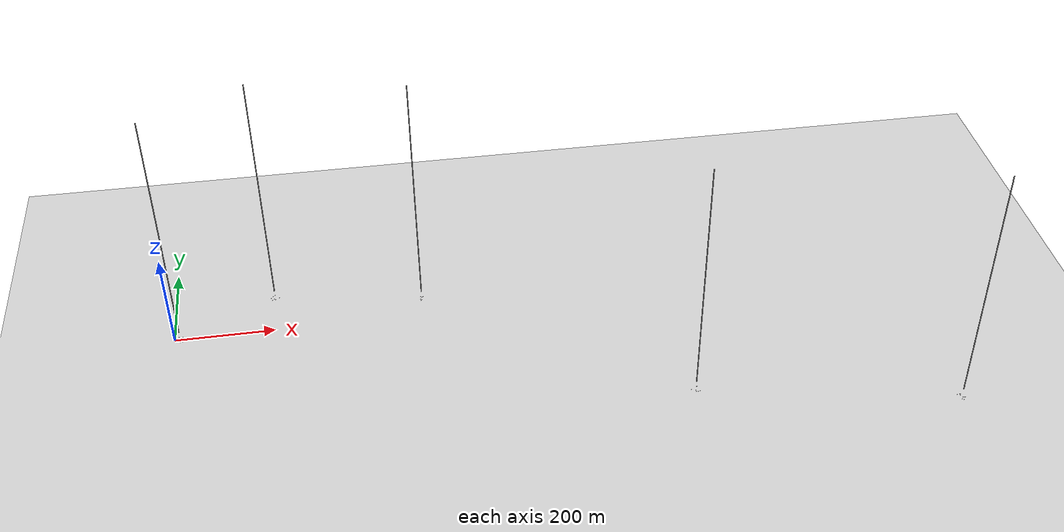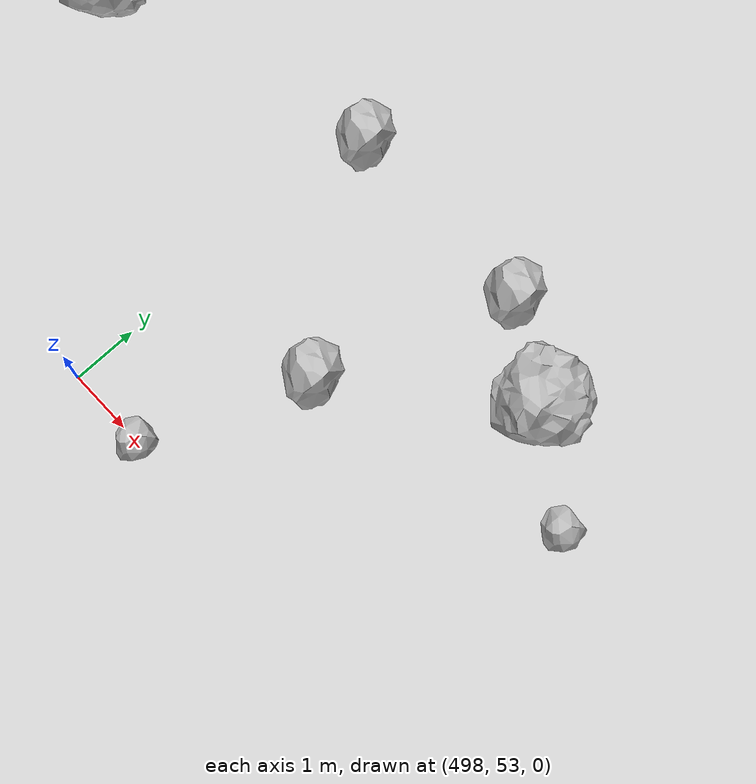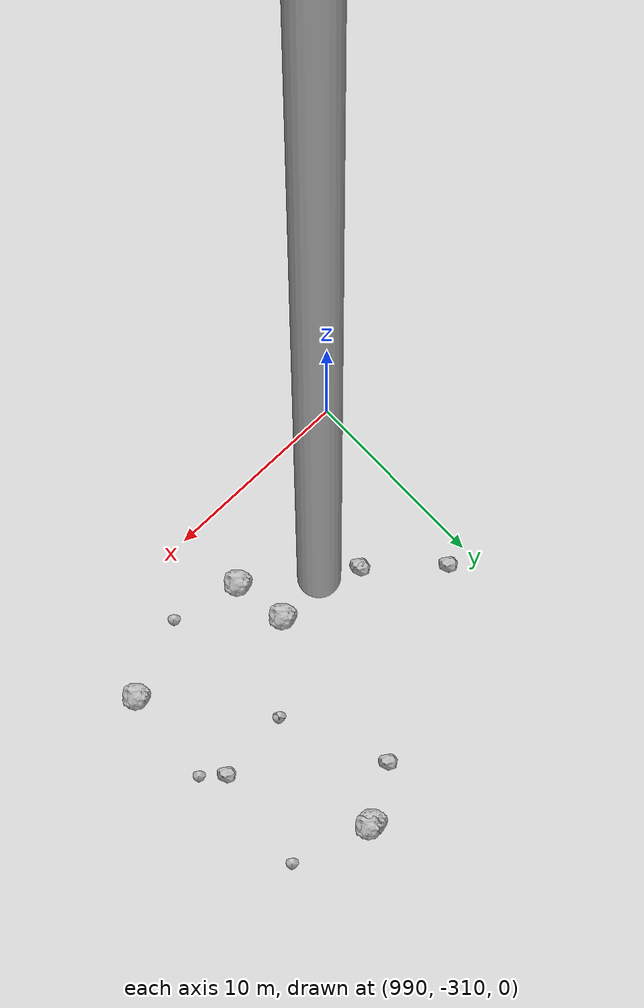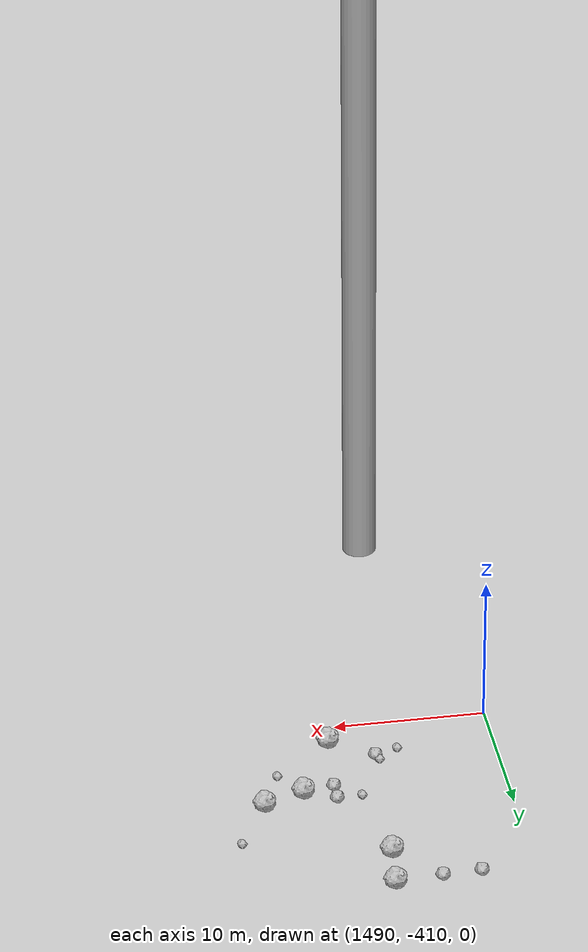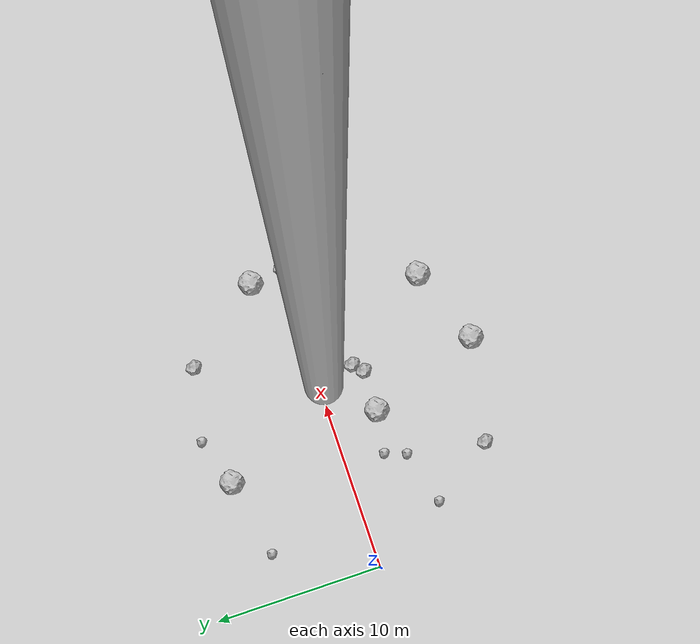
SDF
<?xml version="1.0" ?>
<sdf version="1.6">
  <world name="default">

    <include>
      <uri>model://custom_ground</uri>
    </include>

    <include>
      <uri>model://sun</uri>
    </include>

    <spherical_coordinates>
      <surface_model>EARTH_WGS84</surface_model>
      <latitude_deg>38.161479</latitude_deg>
      <longitude_deg>-122.454630</longitude_deg>
      <elevation>488.0</elevation>
      <heading_deg>90</heading_deg>
    </spherical_coordinates>

    <model name="rock1_0_0">
      <include>
        <uri>model://rock1</uri>
        <pose>18.297749514372303 1.9059714410768471 0.5 0 0 0</pose>
      </include>
    </model>
    <model name="rock1_0_1">
      <include>
        <uri>model://rock1</uri>
        <pose>15.688067243015762 -7.612247149562985 0.5 0 0 0</pose>
      </include>
    </model>
    <model name="rock1_0_2">
      <include>
        <uri>model://rock1</uri>
        <pose>11.166085764328631 -9.390644277486555 0.5 0 0 0</pose>
      </include>
    </model>
    <model name="rock1_0_3">
      <include>
        <uri>model://rock1</uri>
        <pose>7.521637904810985 6.663339762407524 0.5 0 0 0</pose>
      </include>
    </model>
    <model name="rock1_0_4">
      <include>
        <uri>model://rock1</uri>
        <pose>8.858274806008076 -2.7621726312067256 0.5 0 0 0</pose>
      </include>
    </model>
    <model name="rock2_0_0">
      <include>
        <uri>model://rock2</uri>
        <pose>14.6293649791792 6.664395248156978 0.3 0 0 0</pose>
      </include>
    </model>
    <model name="rock2_0_1">
      <include>
        <uri>model://rock2</uri>
        <pose>11.256816786763498 -2.7715187520063616 0.3 0 0 0</pose>
      </include>
    </model>
    <model name="rock2_0_2">
      <include>
        <uri>model://rock2</uri>
        <pose>11.83101241880625 -2.235195429423511 0.3 0 0 0</pose>
      </include>
    </model>
    <model name="rock2_0_3">
      <include>
        <uri>model://rock2</uri>
        <pose>18.57304821944747 -0.08541954743800773 0.3 0 0 0</pose>
      </include>
    </model>
    <model name="rock2_0_4">
      <include>
        <uri>model://rock2</uri>
        <pose>5.028827595106053 -8.199830671971988 0.3 0 0 0</pose>
      </include>
    </model>
    <model name="rock3_0_0">
      <include>
        <uri>model://rock3</uri>
        <pose>2.550660256418844 -4.546577076773657 0.2 0 0 0</pose>
      </include>
    </model>
    <model name="rock3_0_1">
      <include>
        <uri>model://rock3</uri>
        <pose>10.302291851389416 7.587578350263062 0.2 0 0 0</pose>
      </include>
    </model>
    <model name="rock3_0_2">
      <include>
        <uri>model://rock3</uri>
        <pose>2.751529444563685 5.756233728380913 0.2 0 0 0</pose>
      </include>
    </model>
    <model name="rock3_0_3">
      <include>
        <uri>model://rock3</uri>
        <pose>5.796684003630874 -3.6461969687227374 0.2 0 0 0</pose>
      </include>
    </model>
    <model name="rock3_0_4">
      <include>
        <uri>model://rock3</uri>
        <pose>6.252406216798305 -2.3800986936486286 0.2 0 0 0</pose>
      </include>
    </model>
    <model name="rock1_1_0">
      <include>
        <uri>model://rock1</uri>
        <pose>195.87504784436095 105.06995242649653 0.5 0 0 0</pose>
      </include>
    </model>
    <model name="rock1_1_1">
      <include>
        <uri>model://rock1</uri>
        <pose>191.9578531612461 101.18582205398512 0.5 0 0 0</pose>
      </include>
    </model>
    <model name="rock1_1_2">
      <include>
        <uri>model://rock1</uri>
        <pose>207.78146853634328 98.53543162290643 0.5 0 0 0</pose>
      </include>
    </model>
    <model name="rock1_1_3">
      <include>
        <uri>model://rock1</uri>
        <pose>197.6291673913861 96.88099111316777 0.5 0 0 0</pose>
      </include>
    </model>
    <model name="rock1_1_4">
      <include>
        <uri>model://rock1</uri>
        <pose>208.76154276896216 100.15258494742426 0.5 0 0 0</pose>
      </include>
    </model>
    <model name="rock2_1_0">
      <include>
        <uri>model://rock2</uri>
        <pose>194.23750380868674 93.5326784489037 0.3 0 0 0</pose>
      </include>
    </model>
    <model name="rock2_1_1">
      <include>
        <uri>model://rock2</uri>
        <pose>200.72034959848327 95.74718996605115 0.3 0 0 0</pose>
      </include>
    </model>
    <model name="rock2_1_2">
      <include>
        <uri>model://rock2</uri>
        <pose>208.5225518550504 103.17351864277921 0.3 0 0 0</pose>
      </include>
    </model>
    <model name="rock2_1_3">
      <include>
        <uri>model://rock2</uri>
        <pose>199.71645793164066 108.9898618695544 0.3 0 0 0</pose>
      </include>
    </model>
    <model name="rock2_1_4">
      <include>
        <uri>model://rock2</uri>
        <pose>197.3632482637654 103.33308219905004 0.3 0 0 0</pose>
      </include>
    </model>
    <model name="rock3_1_0">
      <include>
        <uri>model://rock3</uri>
        <pose>198.58688497734337 94.84870031692056 0.2 0 0 0</pose>
      </include>
    </model>
    <model name="rock3_1_1">
      <include>
        <uri>model://rock3</uri>
        <pose>204.09096816595496 97.16668305651612 0.2 0 0 0</pose>
      </include>
    </model>
    <model name="rock3_1_2">
      <include>
        <uri>model://rock3</uri>
        <pose>207.37911191161155 100.61141823610488 0.2 0 0 0</pose>
      </include>
    </model>
    <model name="rock3_1_3">
      <include>
        <uri>model://rock3</uri>
        <pose>201.67020671457084 92.46235075092268 0.2 0 0 0</pose>
      </include>
    </model>
    <model name="rock3_1_4">
      <include>
        <uri>model://rock3</uri>
        <pose>201.1444696492474 107.57596822387941 0.2 0 0 0</pose>
      </include>
    </model>
    <model name="rock1_2_0">
      <include>
        <uri>model://rock1</uri>
        <pose>497.65125980516245 49.37052923343554 0.5 0 0 0</pose>
      </include>
    </model>
    <model name="rock1_2_1">
      <include>
        <uri>model://rock1</uri>
        <pose>499.9990674486124 47.853130171599226 0.5 0 0 0</pose>
      </include>
    </model>
    <model name="rock1_2_2">
      <include>
        <uri>model://rock1</uri>
        <pose>498.0446885155236 46.482754072136274 0.5 0 0 0</pose>
      </include>
    </model>
    <model name="rock1_2_3">
      <include>
        <uri>model://rock1</uri>
        <pose>493.6129274212431 57.292511534721164 0.5 0 0 0</pose>
      </include>
    </model>
    <model name="rock1_2_4">
      <include>
        <uri>model://rock1</uri>
        <pose>502.79670228971554 57.48204866635213 0.5 0 0 0</pose>
      </include>
    </model>
    <model name="rock2_2_0">
      <include>
        <uri>model://rock2</uri>
        <pose>498.102988101986 58.465215448372405 0.3 0 0 0</pose>
      </include>
    </model>
    <model name="rock2_2_1">
      <include>
        <uri>model://rock2</uri>
        <pose>502.23555248708135 48.3345123121346 0.3 0 0 0</pose>
      </include>
    </model>
    <model name="rock2_2_2">
      <include>
        <uri>model://rock2</uri>
        <pose>500.2693649852223 55.4558910883443 0.3 0 0 0</pose>
      </include>
    </model>
    <model name="rock2_2_3">
      <include>
        <uri>model://rock2</uri>
        <pose>501.3509129789034 58.37142342009876 0.3 0 0 0</pose>
      </include>
    </model>
    <model name="rock2_2_4">
      <include>
        <uri>model://rock2</uri>
        <pose>500.52008797578833 46.63068027110561 0.3 0 0 0</pose>
      </include>
    </model>
    <model name="rock3_2_0">
      <include>
        <uri>model://rock3</uri>
        <pose>504.21085493827184 56.448136330963045 0.2 0 0 0</pose>
      </include>
    </model>
    <model name="rock3_2_1">
      <include>
        <uri>model://rock3</uri>
        <pose>499.28123540233514 52.97707351847223 0.2 0 0 0</pose>
      </include>
    </model>
    <model name="rock3_2_2">
      <include>
        <uri>model://rock3</uri>
        <pose>505.1286371570976 41.700993708207676 0.2 0 0 0</pose>
      </include>
    </model>
    <model name="rock3_2_3">
      <include>
        <uri>model://rock3</uri>
        <pose>490.55160228844716 49.90253066486501 0.2 0 0 0</pose>
      </include>
    </model>
    <model name="rock3_2_4">
      <include>
        <uri>model://rock3</uri>
        <pose>497.2907186889731 45.49567749448924 0.2 0 0 0</pose>
      </include>
    </model>
    <model name="rock1_3_0">
      <include>
        <uri>model://rock1</uri>
        <pose>999.2122858121795 -303.6200445525087 0.5 0 0 0</pose>
      </include>
    </model>
    <model name="rock1_3_1">
      <include>
        <uri>model://rock1</uri>
        <pose>999.6532972765287 -306.4557265704347 0.5 0 0 0</pose>
      </include>
    </model>
    <model name="rock1_3_2">
      <include>
        <uri>model://rock1</uri>
        <pose>1003.2472765104518 -292.83164232767837 0.5 0 0 0</pose>
      </include>
    </model>
    <model name="rock1_3_3">
      <include>
        <uri>model://rock1</uri>
        <pose>1007.3883929433163 -305.6664042219277 0.5 0 0 0</pose>
      </include>
    </model>
    <model name="rock1_3_4">
      <include>
        <uri>model://rock1</uri>
        <pose>1003.5007694320791 -292.8208458908321 0.5 0 0 0</pose>
      </include>
    </model>
    <model name="rock2_3_0">
      <include>
        <uri>model://rock2</uri>
        <pose>1000.4945641186206 -294.535451961448 0.3 0 0 0</pose>
      </include>
    </model>
    <model name="rock2_3_1">
      <include>
        <uri>model://rock2</uri>
        <pose>994.5168253318403 -302.87877134982756 0.3 0 0 0</pose>
      </include>
    </model>
    <model name="rock2_3_2">
      <include>
        <uri>model://rock2</uri>
        <pose>994.5370783852487 -302.7435458262644 0.3 0 0 0</pose>
      </include>
    </model>
    <model name="rock2_3_3">
      <include>
        <uri>model://rock2</uri>
        <pose>991.1970367180758 -299.82141518158903 0.3 0 0 0</pose>
      </include>
    </model>
    <model name="rock2_3_4">
      <include>
        <uri>model://rock2</uri>
        <pose>1006.7864085732925 -299.62784174934563 0.3 0 0 0</pose>
      </include>
    </model>
    <model name="rock3_3_0">
      <include>
        <uri>model://rock3</uri>
        <pose>1007.8111226061668 -300.57485907364867 0.2 0 0 0</pose>
      </include>
    </model>
    <model name="rock3_3_1">
      <include>
        <uri>model://rock3</uri>
        <pose>1002.8093668124837 -300.0091192136313 0.2 0 0 0</pose>
      </include>
    </model>
    <model name="rock3_3_2">
      <include>
        <uri>model://rock3</uri>
        <pose>1007.4930514487226 -294.14220305616357 0.2 0 0 0</pose>
      </include>
    </model>
    <model name="rock3_3_3">
      <include>
        <uri>model://rock3</uri>
        <pose>1002.8643327458676 -300.00127079267793 0.2 0 0 0</pose>
      </include>
    </model>
    <model name="rock3_3_4">
      <include>
        <uri>model://rock3</uri>
        <pose>1003.2068329149234 -307.3332741531525 0.2 0 0 0</pose>
      </include>
    </model>
    <model name="rock1_4_0">
      <include>
        <uri>model://rock1</uri>
        <pose>1500.725294926826 -408.21718274424 0.5 0 0 0</pose>
      </include>
    </model>
    <model name="rock1_4_1">
      <include>
        <uri>model://rock1</uri>
        <pose>1498.6525002600822 -395.85966476506457 0.5 0 0 0</pose>
      </include>
    </model>
    <model name="rock1_4_2">
      <include>
        <uri>model://rock1</uri>
        <pose>1498.9955139806123 -392.65352265698664 0.5 0 0 0</pose>
      </include>
    </model>
    <model name="rock1_4_3">
      <include>
        <uri>model://rock1</uri>
        <pose>1503.1327198780236 -402.9347206640042 0.5 0 0 0</pose>
      </include>
    </model>
    <model name="rock1_4_4">
      <include>
        <uri>model://rock1</uri>
        <pose>1505.7723013553273 -401.9372937935886 0.5 0 0 0</pose>
      </include>
    </model>
    <model name="rock2_4_0">
      <include>
        <uri>model://rock2</uri>
        <pose>1501.1043660459777 -403.2980783809886 0.3 0 0 0</pose>
      </include>
    </model>
    <model name="rock2_4_1">
      <include>
        <uri>model://rock2</uri>
        <pose>1501.100921541681 -401.97247709428774 0.3 0 0 0</pose>
      </include>
    </model>
    <model name="rock2_4_2">
      <include>
        <uri>model://rock2</uri>
        <pose>1497.9094879977354 -406.2398912121824 0.3 0 0 0</pose>
      </include>
    </model>
    <model name="rock2_4_3">
      <include>
        <uri>model://rock2</uri>
        <pose>1495.962424831053 -392.87692550005994 0.3 0 0 0</pose>
      </include>
    </model>
    <model name="rock2_4_4">
      <include>
        <uri>model://rock2</uri>
        <pose>1493.5053736232046 -392.9496576624706 0.3 0 0 0</pose>
      </include>
    </model>
    <model name="rock3_4_0">
      <include>
        <uri>model://rock3</uri>
        <pose>1497.6687496317425 -405.841189855832 0.2 0 0 0</pose>
      </include>
    </model>
    <model name="rock3_4_1">
      <include>
        <uri>model://rock3</uri>
        <pose>1504.4696653349786 -405.01510609930295 0.2 0 0 0</pose>
      </include>
    </model>
    <model name="rock3_4_2">
      <include>
        <uri>model://rock3</uri>
        <pose>1507.7035760832318 -398.17812972894836 0.2 0 0 0</pose>
      </include>
    </model>
    <model name="rock3_4_3">
      <include>
        <uri>model://rock3</uri>
        <pose>1499.4294602339764 -402.12736582887123 0.2 0 0 0</pose>
      </include>
    </model>
    <model name="rock3_4_4">
      <include>
        <uri>model://rock3</uri>
        <pose>1496.3462155597533 -406.89037314556464 0.2 0 0 0</pose>
      </include>
    </model>

    <model name="cylinder_1">
      <static>true</static>
      <link name="link">
        <visual name="visual">
          <geometry>
            <cylinder>
              <radius>1</radius>
              <length>500</length>
            </cylinder>
          </geometry>
        </visual>
      </link>
      <pose>10 0 270 0 0 0</pose>
    </model>

    <model name="cylinder_2">
      <static>true</static>
      <link name="link">
        <visual name="visual">
          <geometry>
            <cylinder>
              <radius>1</radius>
              <length>500</length>
            </cylinder>
          </geometry>
        </visual>
      </link>
      <pose>200 100 270 0 0 0</pose>
    </model>

    <model name="cylinder_3">
      <static>true</static>
      <link name="link">
        <visual name="visual">
          <geometry>
            <cylinder>
              <radius>1</radius>
              <length>500</length>
            </cylinder>
          </geometry>
        </visual>
      </link>
      <pose>500 50 270 0 0 0</pose>
    </model>

    <model name="cylinder_4">
      <static>true</static>
      <link name="link">
        <visual name="visual">
          <geometry>
            <cylinder>
              <radius>1</radius>
              <length>500</length>
            </cylinder>
          </geometry>
        </visual>
      </link>
      <pose>1000 -300 270 0 0 0</pose>
    </model>

    <model name="cylinder_5">
      <static>true</static>
      <link name="link">
        <visual name="visual">
          <geometry>
            <cylinder>
              <radius>1</radius>
              <length>500</length>
            </cylinder>
          </geometry>
        </visual>
      </link>
      <pose>1500 -400 270 0 0 0</pose>
    </model>

  </world>
</sdf>

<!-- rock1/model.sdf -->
<sdf version="1.6">
  <model name="rock1">
    <static>true</static> <!-- Set to true if the model should not move -->
    <pose>0 0 0 0 0 0</pose>

    <!--z offset is 0.5 for full scale-->

    <link name="link">
      <collision name="rock1_collision">
        <geometry>
          <mesh>
            <uri>model://meshes/rock1.dae</uri>
          </mesh>
        </geometry>
      </collision>
      <visual name="rock1_visual">
        <geometry>
          <mesh>
            <uri>model://meshes/rock1.dae</uri>
          </mesh>
        </geometry>
        <material>
          <script>
            <uri>model://materials/scripts/sand_pebbles.material</uri>
            <name>custom_ground/Image</name>
          </script>
        </material>
      </visual>
    </link>
  </model>
</sdf>

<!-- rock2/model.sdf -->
<sdf version="1.6">
  <model name="rock2">
    <static>true</static> <!-- Set to true if the model should not move -->
    <pose>0 0 0 0 0 0</pose>

    <!--z offset is 0.3 for full scale-->

    <link name="link">
      <collision name="rock2_collision">
        <geometry>
          <mesh>
            <uri>model://meshes/rock2.dae</uri>
          </mesh>
        </geometry>
      </collision>
      <visual name="rock2_visual">
        <geometry>
          <mesh>
            <uri>model://meshes/rock2.dae</uri>
          </mesh>
        </geometry>
        <material>
          <script>
            <uri>model://materials/scripts/sand_pebbles.material</uri>
            <name>custom_ground/Image</name>
          </script>
        </material>
      </visual>
    </link>
  </model>
</sdf>

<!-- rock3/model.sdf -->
<sdf version="1.6">
  <model name="rock3">
    <static>true</static> <!-- Set to true if the model should not move -->
    <pose>0 0 0 0 0 0</pose>

    <!--z offset is 0.2 for full scale-->

    <link name="link">
      <collision name="rock3_collision">
        <geometry>
          <mesh>
            <uri>model://meshes/rock3.dae</uri>
          </mesh>
        </geometry>
      </collision>
      <visual name="rock3_visual">
        <geometry>
          <mesh>
            <uri>model://meshes/rock3.dae</uri>
          </mesh>
        </geometry>
        <material>
          <script>
            <uri>model://materials/scripts/sand_pebbles.material</uri>
            <name>custom_ground/Image</name>
          </script>
        </material>
      </visual>
    </link>
  </model>
</sdf>

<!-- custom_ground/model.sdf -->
<sdf version="1.6">
  <model name="custom_ground">
    <static>true</static> <!-- Ground is static and immovable -->
    <link name="ground_link">
      <pose>240 0 0 0 0 0</pose> <!-- Position and orientation relative to the world -->
      <!-- Visual Representation -->
      <visual name="ground_visual">
        <geometry>
          <plane>
            <normal>0 0 1</normal> <!-- Upward facing plane -->
            <size>500 500</size> <!-- Size of the plane -->
          </plane>
        </geometry>
        <material>
          <script>
            <uri>model://materials/scripts/sand_pebbles.material</uri>
            <name>custom_ground/Image</name>
          </script>
        </material>
      </visual>

      <!-- Collision Representation -->
      <collision name="ground_collision">
        <geometry>
          <plane>
            <normal>0 0 1</normal>
            <size>100 100</size>
          </plane>
        </geometry>
      </collision>

    </link>
  </model>
</sdf>
